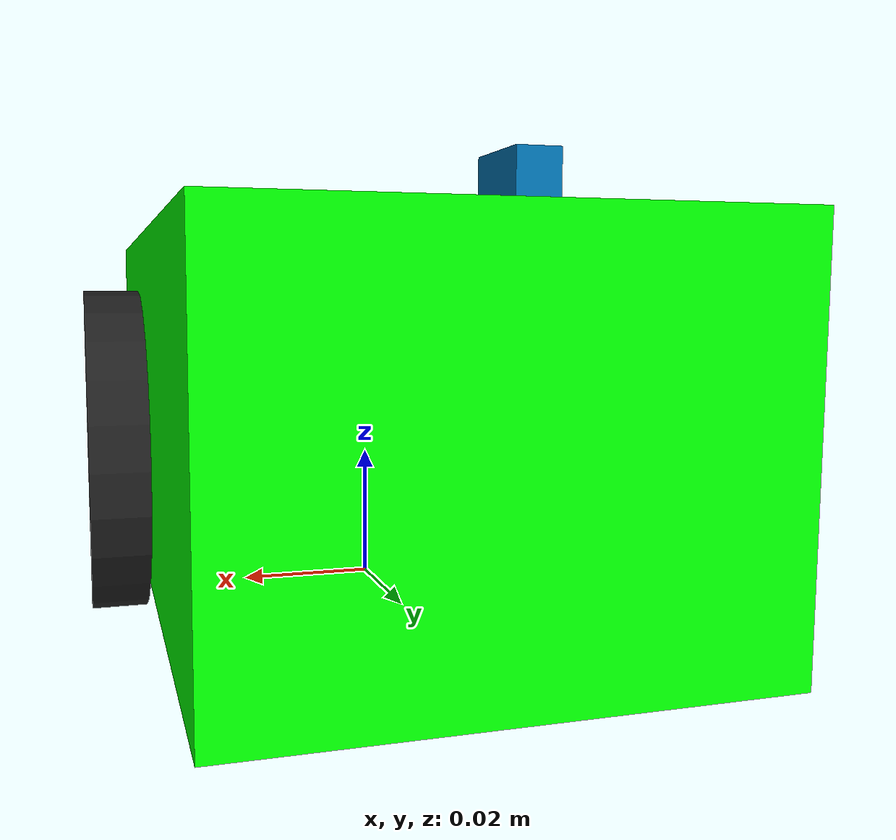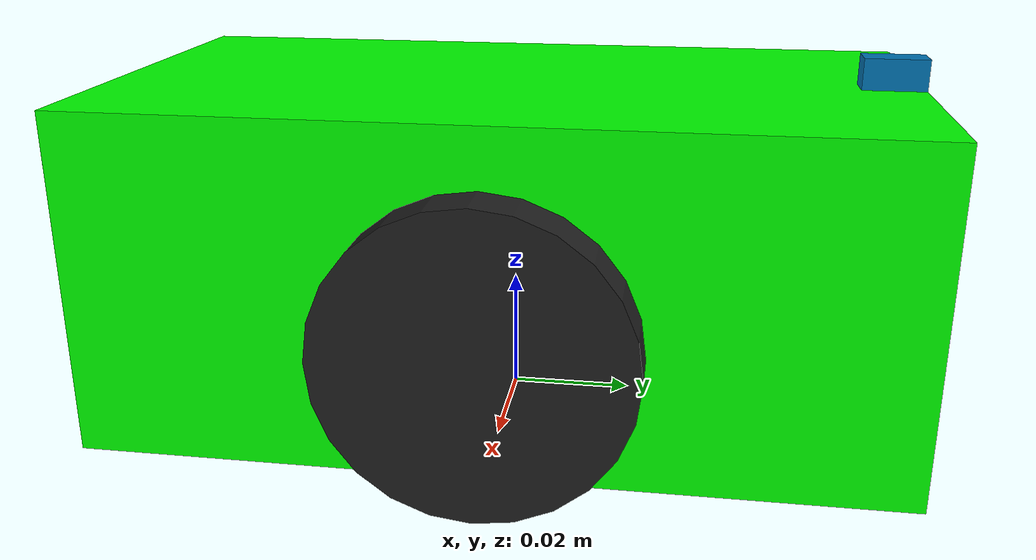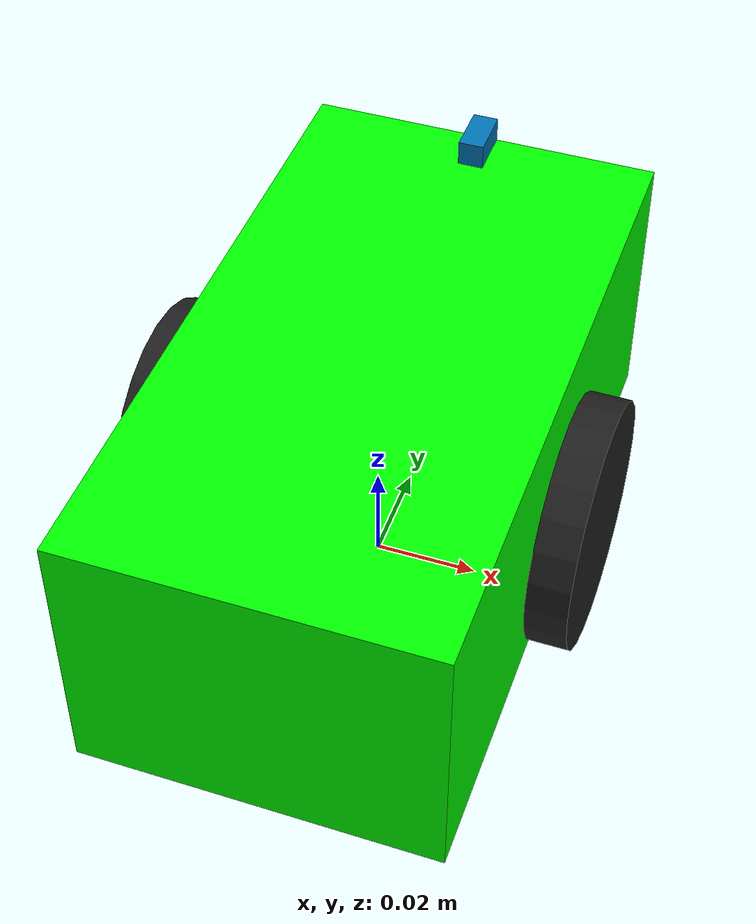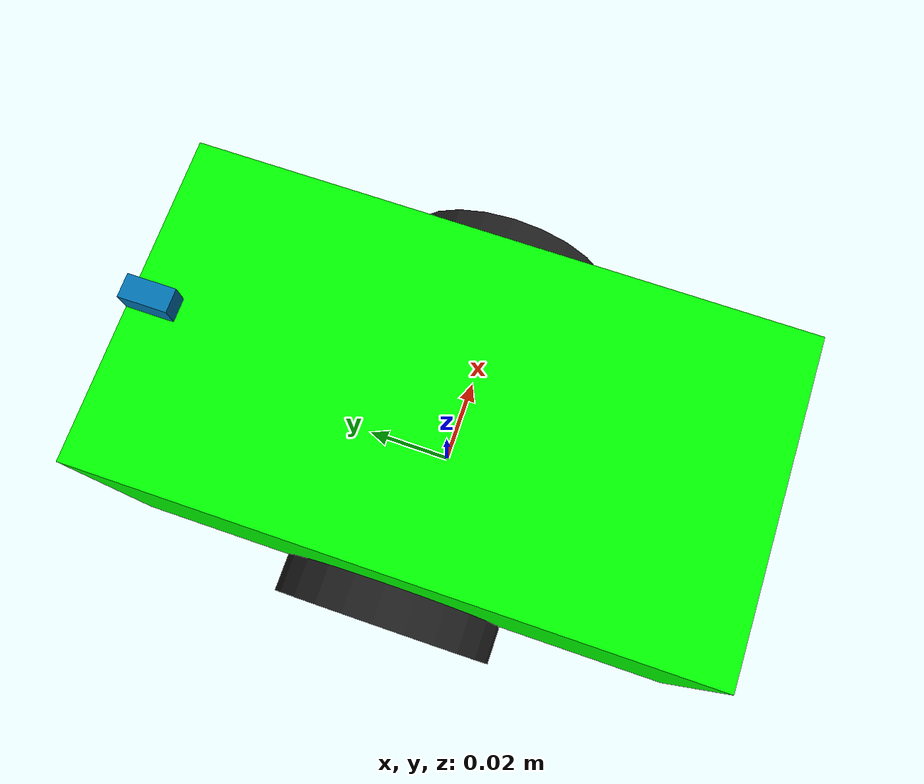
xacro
<?xml version="1.0" ?>
<robot name="SimpleMouse" xmlns:xacro="http://ros.org/wiki/xacro">

 <xacro:include filename="$(find sd_sample_pkg)/urdf/body.urdf.xacro" />
 <xacro:include filename="$(find sd_sample_pkg)/urdf/wheel.urdf.xacro" />
 <xacro:include filename="$(find sd_sample_pkg)/urdf/light_sensor.urdf.xacro" />
 <xacro:include filename="$(find sd_sample_pkg)/urdf/camera.urdf.xacro" />

  <gazebo>
    <plugin name="differential_drive_controller" filename="libgazebo_ros_diff_drive.so">
      <leftJoint>wheel_l_joint</leftJoint>
      <rightJoint>wheel_r_joint</rightJoint>
      <robotBaseFrame>base_link</robotBaseFrame>
      <wheelSeparation>0.08</wheelSeparation>
      <wheelDiameter>0.048</wheelDiameter>
      <publishWheelJointState>true</publishWheelJointState>
      <legacyMode>false</legacyMode>
      <odometryTopic>odometry</odometryTopic>
      <odometryFrame>odometry</odometryFrame>
    </plugin>
  </gazebo>

 <xacro:wheel rl="r" parent="body" />
 <xacro:wheel rl="l" parent="body" />
 <xacro:gazebo_camera name="front" parent="body" xyz="0.0 0.06 0.03" direction="0" />
</robot>

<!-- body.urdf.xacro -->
<robot name="body" xmlns:xacro="http://ros.org/wiki/xacro">
<link name="base_link" />

<xacro:property name="b_m" value="0.168"/>
<xacro:property name="b_m2" value="${b_m/12}"/>
<xacro:property name="b_w" value="0.07"/>
<xacro:property name="b_h" value="0.13"/>
<xacro:property name="b_d" value="0.055"/>
<link name="body">
   <visual>
　　<geometry>
　　　<box size="${b_w} ${b_h} ${b_d}" />
     </geometry>
     <material name="red">
        <color rgba="0.0 1.0 0.0 2.0"/>
      </material>

  </visual>
   <collision>
　　<geometry>
　　　<box size="${b_w} ${b_h} ${b_d}" />
     </geometry>
  </collision>
  <inertial>
     <origin xyz="0 0 0" rpy="0 0 0" />
     <mass value="${b_m}" />
     <inertia ixx="${b_m2*(b_h*b_h+b_d*b_d)}" ixy="0"    ixz="0"
                 iyx="0"   iyy="${b_m2*(b_w*b_w+b_d*b_d)}"  iyz="0"
		 izx="0"   izy="0"  izz="${b_m2*(b_w*b_w+b_h*b_h)}" />
  </inertial>
</link>
<gazebo reference="body">
    <material>Gazebo/Orange</material>
</gazebo>
<joint name="body_joint" type="fixed">
<parent link="base_link" />
   <child link="body" />
   <origin xyz="0 0 0.0275" rpy="0 0 0" />
</joint>
</robot>

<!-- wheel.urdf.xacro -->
<robot name="wheel" xmlns:xacro="http://ros.org/wiki/xacro" >

<xacro:property name="PI" value="3.1415926535897931"/>
<xacro:property name="wheel_radius" value="0.024"/>
<xacro:property name="wheel_height" value="0.008"/>
<xacro:property name="wheel_mass" value="0.112"/>

<xacro:macro name="wheel" params="rl parent">
<link name="wheel_${rl}">
<visual>
  <geometry>
     <cylinder length="${wheel_height}" radius="${wheel_radius}" />
  </geometry>
</visual>
   <collision>
　　<geometry>
　　　<cylinder radius="${wheel_radius}" length="${wheel_height}" />
     </geometry>
  </collision>
  <inertial>
     <origin xyz="0 0 0" rpy="0 0 0" />
     <mass value="${wheel_mass}" />
    <inertia ixx="${wheel_mass*(3*wheel_radius*wheel_radius+wheel_height*wheel_height)/12}"
        ixy="0"  ixz="0"
        iyx="0"  iyy="${wheel_mass*(3*wheel_radius*wheel_radius+wheel_height*wheel_height)/12}"
         iyz="0"
         izx="0"  izy="0"  izz="${wheel_mass*(wheel_radius*wheel_radius)/2}" />
  </inertial>
</link>
<gazebo reference="wheel_${rl}">
    <material>Gazebo/Black</material>
</gazebo>
<joint name="wheel_${rl}_joint" type="continuous">
  <parent link="${parent}" />
  <child link="wheel_${rl}" />
  <xacro:if value="${rl == 'r'}">
    <origin xyz="0.04 0.0 ${0.022 - 0.0275}" rpy="0 ${PI/2} 0" />
  </xacro:if>
  <xacro:if value="${rl == 'l'}">
     <origin xyz="-0.04 0.0 ${0.022 - 0.0275}" rpy="0 ${PI/2} 0" />
  </xacro:if>
  <axis xyz="0 0 -1" />
  <limit effort="10" velocity="10" />
  <joint_properties damping="0.0" friction="0.0" />
</joint>
</xacro:macro>
</robot>

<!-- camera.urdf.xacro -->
<robot name="camera" xmlns:xacro="http://ros.org/wiki/xacro">

<xacro:property name="PI" value="3.14159265358979"/>

<!-- Let's try to model camera! -->
<!-- reference: https://qiita.com/srs/items/7d78f9ad21a0e61f5bff -->
<!-- gazebo official: http://gazebosim.org/tutorials?tut=ros_gzplugins -->

<xacro:macro name="gazebo_camera" params="name parent xyz direction">
    <link name="camera">
        <visual>
            <geometry>
                <box size="0.01 0.005 0.005"/>
            </geometry>
        </visual>
        <inertial>
            <mass value="0.0001"/>
            <inertia ixx="0.0001" ixy="0" ixz="0"
                     iyx="0" iyy="0.0001" iyz="0"
                     izx="0" izy="0" izz="0.0001" />
        </inertial>
    </link>
    <joint name="camera_joint" type="fixed">
        <parent link="${parent}"/>
        <child link="camera"/>
        <origin xyz="${xyz}" rpy="0 0 ${PI/2 + direction}"/>
    </joint>
    <gazebo reference="camera">
     <sensor type="camera" name="camera">
      <update_rate>30.0</update_rate>
      <camera name="head">
        <horizontal_fov>1.3962634</horizontal_fov>
        <image>
          <width>800</width>
          <height>800</height>
          <format>R8G8B8</format>
        </image>
        <clip>
          <near>0.02</near>
          <far>300</far>
        </clip>
        <noise>
          <type>gaussian</type>
          <!-- Noise is sampled independently per pixel on each frame.
               That pixel's noise value is added to each of its color
               channels, which at that point lie in the range [0,1]. -->
          <mean>0.0</mean>
          <stddev>0.007</stddev>
        </noise>
      </camera>
      <plugin name="camera_controller" filename="libgazebo_ros_camera.so">
        <alwaysOn>true</alwaysOn>
        <updateRate>0.0</updateRate>
        <cameraName>rrbot/camera</cameraName>
        <imageTopicName>image_raw</imageTopicName>
        <cameraInfoTopicName>camera_info</cameraInfoTopicName>
        <frameName>camera</frameName>
        <hackBaseline>0.07</hackBaseline>
        <distortionK1>0.0</distortionK1>
        <distortionK2>0.0</distortionK2>
        <distortionK3>0.0</distortionK3>
        <distortionT1>0.0</distortionT1>
        <distortionT2>0.0</distortionT2>
      </plugin>
     </sensor>
    </gazebo>
</xacro:macro>
</robot>
